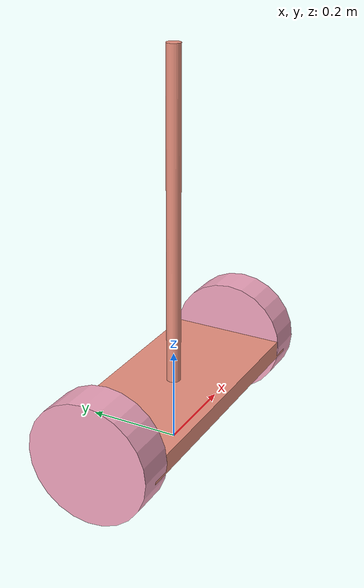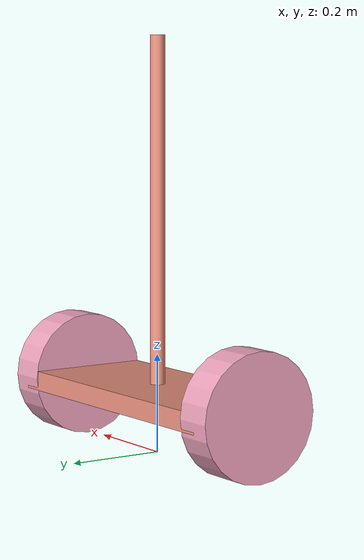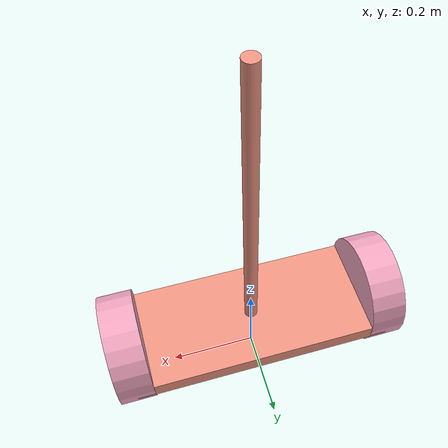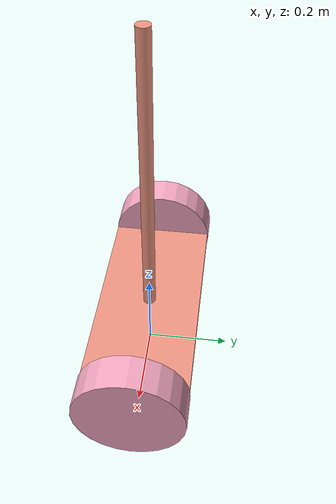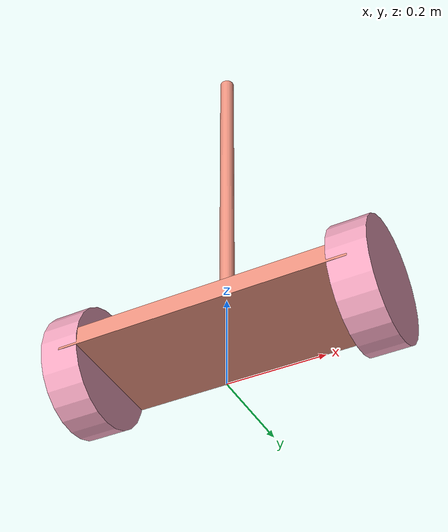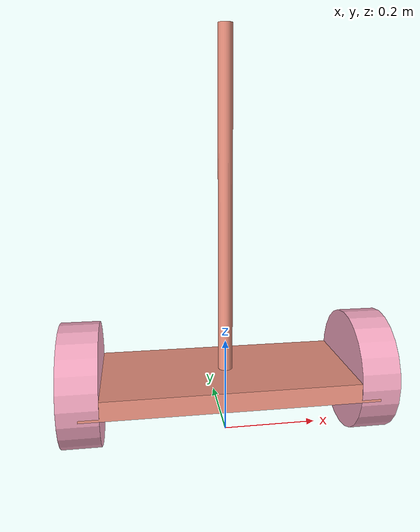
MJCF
<mujoco model="balance">
    <compiler angle="radian"/>
    <size njmax="500" nconmax="100"/>
    <asset>
        <texture type="2d" name="wheel_texture" builtin="checker" mark="edge" rgb1="1 1 1" rgb2="0.9 0.3 0.5"
                 markrgb="0.3 0.3 0.3" width="1024" height="1024"/>
        <material name="wheel_material" texture="wheel_texture" texuniform="true" texrepeat="30 30"/>
        <texture type="2d" name="body_texture" builtin="gradient" rgb1="0.9 0.3 0.5"
                 rgb2="0.95 0.85 0.5" width="512" height="512"/>
        <material name="body_material" texture="body_texture" texrepeat="4 2" shininess="0.3"/>
    </asset>
    <option gravity="0 0 -9.81" viscosity="0.002"/>
    <worldbody>
        <body name="segway" pos="0 0 0.09">
            <joint name="segway_free" type="free" damping="0.05"/>

            <!-- 轮轴杆：加厚、加重，降低重心 -->
            <body name="wheel_axle" pos="0 0 0.03">
                <inertial pos="0.0 0.0 0.0" quat="0.707107 0 0 0.707107"
                          mass="10.489" diaginertia="0.87993 0.64149 0.31774"/>
                <geom type="box" size="0.3 0.125 0.02" material="body_material"/>
            </body>

            <!-- 倒立杆 -->
            <body name="pendulum" pos="0 0 0.05">
                <inertial pos="0.0 0.0 0.0" quat="0.707107 0 0 0.707107"
                          mass="4.48164" diaginertia="0.75267 0.672276 0.0894829"/>
                <geom type="cylinder" size="0.015 0.35" pos="0 0 0.35" material="body_material"/>
            </body>

            <!-- 左轮 -->
            <body name="l_wheel" pos="-0.3 0 0.034">
                <inertial pos="0 0 0" quat="0.5 0.5 -0.5 0.5"
                          mass="4.23004" diaginertia="0.01832 0.010662 0.0105854"/>
                <joint name="torso_l_wheel" type="hinge" pos="0 0 0" axis="-1 0 0" damping="0.05"/>
                <geom type="cylinder" size="0.1275 0.04" quat="0.707107 0 0.707107 0"
                      material="wheel_material" contype="2" conaffinity="1" friction="2 1 0.8"/>
                <geom type="cylinder" size="0.1275 0.04" quat="0.707107 0 0.707107 0"
                      material="wheel_material"/>
            </body>

            <!-- 右轮 -->
            <body name="r_wheel" pos="0.3 0 0.034">
                <inertial pos="0 0 0" quat="0.5 0.5 -0.5 0.5"
                          mass="4.23004" diaginertia="0.01832 0.010662 0.0105854"/>
                <joint name="torso_r_wheel" type="hinge" pos="0 0 0" axis="-1 0 0" damping="0.05"/>
                <geom type="cylinder" size="0.1275 0.04" quat="0.707107 0 0.707107 0"
                      material="wheel_material" contype="2" conaffinity="1" friction="2 1 0.8"/>
                <geom type="cylinder" size="0.1275 0.04" quat="0.707107 0 0.707107 0"
                      material="wheel_material"/>
            </body>
        </body>
    </worldbody>

    <actuator>
        <!-- 添加力矩限幅，避免过激响应 -->
        <motor name="motor_l_wheel" joint="torso_l_wheel" gear="1" ctrlrange="-15 15" ctrllimited="true"/>
        <motor name="motor_r_wheel" joint="torso_r_wheel" gear="1" ctrlrange="-15 15" ctrllimited="true"/>
    </actuator>
</mujoco>
